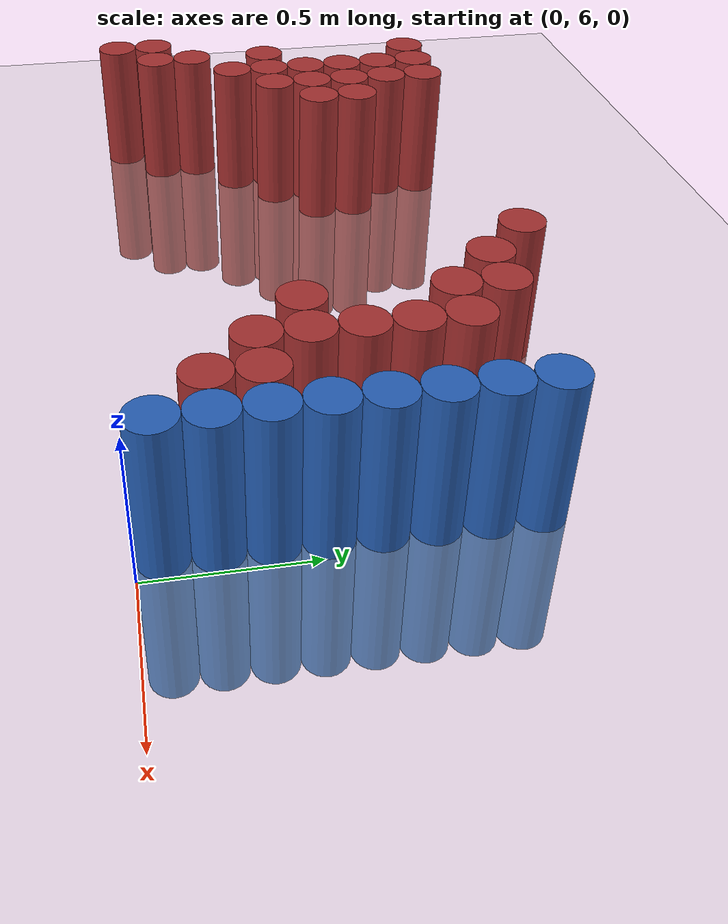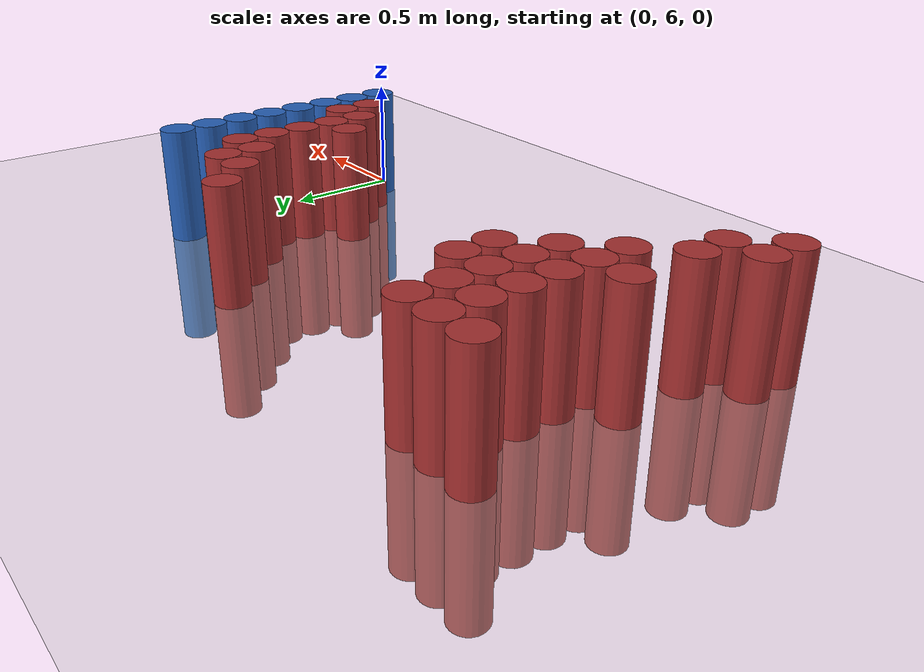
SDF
<sdf version="1.6">
 <world name="default">
  <model name="ground_plane">
   <static>1</static>
   <link name="link">
    <collision name="collision">
     <geometry><plane><normal>0 0 1</normal><size>100 100</size></plane></geometry>
     <surface><friction><ode><mu>100</mu><mu2>50</mu2></ode></friction></surface>
    </collision>
    <visual name="visual">
     <cast_shadows>0</cast_shadows>
     <geometry><plane><normal>0 0 1</normal><size>100 100</size></plane></geometry>
     <material>
      <script><uri>file://media/materials/scripts/gazebo.material</uri><name>Gazebo/Grey</name></script>
     </material>
    </visual>
   </link>
  </model>
  <model name="unit_cylinder_209">
   <static>1</static>
   <pose>-2.475000 6.075000 0.000000 0.000000 0.000000 0.000000</pose>
   <link name="link">
    <inertial>
     <mass>1</mass>
     <inertia><ixx>0.145833</ixx><ixy>0</ixy><ixz>0</ixz><iyy>0.145833</iyy><iyz>0</iyz><izz>0.125</izz></inertia>
    </inertial>
    <collision name="collision">
     <geometry><cylinder><radius>0.075000</radius><length>1</length></cylinder></geometry>
    </collision>
    <visual name="visual">
     <geometry><cylinder><radius>0.075000</radius><length>1</length></cylinder></geometry>
     <material>
      <ambient>0.648000 0.192000 0.192000 1</ambient>
      <diffuse>0.648000 0.192000 0.192000 1</diffuse>
     </material>
     <material>
      <script><name>Gazebo/Grey</name><uri>file://media/materials/scripts/gazebo.material</uri></script>
     </material>
    </visual>
    <sensor name="sensor_contact" type="contact"><contact><collision>collision</collision></contact></sensor>
   </link>
   <plugin filename="gz-sim-touchplugin-system" name="gz::sim::systems::TouchPlugin">
    <target>robot</target>
    <namespace>robot</namespace>
    <time>0.001</time>
    <enabled>true</enabled>
   </plugin>
  </model>
  <model name="unit_cylinder_210">
   <static>1</static>
   <pose>-2.475000 6.225000 0.000000 0.000000 0.000000 0.000000</pose>
   <link name="link">
    <inertial>
     <mass>1</mass>
     <inertia><ixx>0.145833</ixx><ixy>0</ixy><ixz>0</ixz><iyy>0.145833</iyy><iyz>0</iyz><izz>0.125</izz></inertia>
    </inertial>
    <collision name="collision">
     <geometry><cylinder><radius>0.075000</radius><length>1</length></cylinder></geometry>
    </collision>
    <visual name="visual">
     <geometry><cylinder><radius>0.075000</radius><length>1</length></cylinder></geometry>
     <material>
      <ambient>0.648000 0.192000 0.192000 1</ambient>
      <diffuse>0.648000 0.192000 0.192000 1</diffuse>
     </material>
     <material>
      <script><name>Gazebo/Grey</name><uri>file://media/materials/scripts/gazebo.material</uri></script>
     </material>
    </visual>
    <sensor name="sensor_contact" type="contact"><contact><collision>collision</collision></contact></sensor>
   </link>
   <plugin filename="gz-sim-touchplugin-system" name="gz::sim::systems::TouchPlugin">
    <target>robot</target>
    <namespace>robot</namespace>
    <time>0.001</time>
    <enabled>true</enabled>
   </plugin>
  </model>
  <model name="unit_cylinder_213">
   <static>1</static>
   <pose>-2.325000 6.225000 0.000000 0.000000 0.000000 0.000000</pose>
   <link name="link">
    <inertial>
     <mass>1</mass>
     <inertia><ixx>0.145833</ixx><ixy>0</ixy><ixz>0</ixz><iyy>0.145833</iyy><iyz>0</iyz><izz>0.125</izz></inertia>
    </inertial>
    <collision name="collision">
     <geometry><cylinder><radius>0.075000</radius><length>1</length></cylinder></geometry>
    </collision>
    <visual name="visual">
     <geometry><cylinder><radius>0.075000</radius><length>1</length></cylinder></geometry>
     <material>
      <ambient>0.648000 0.192000 0.192000 1</ambient>
      <diffuse>0.648000 0.192000 0.192000 1</diffuse>
     </material>
     <material>
      <script><name>Gazebo/Grey</name><uri>file://media/materials/scripts/gazebo.material</uri></script>
     </material>
    </visual>
    <sensor name="sensor_contact" type="contact"><contact><collision>collision</collision></contact></sensor>
   </link>
   <plugin filename="gz-sim-touchplugin-system" name="gz::sim::systems::TouchPlugin">
    <target>robot</target>
    <namespace>robot</namespace>
    <time>0.001</time>
    <enabled>true</enabled>
   </plugin>
  </model>
  <model name="unit_cylinder_214">
   <static>1</static>
   <pose>-2.325000 6.375000 0.000000 0.000000 0.000000 0.000000</pose>
   <link name="link">
    <inertial>
     <mass>1</mass>
     <inertia><ixx>0.145833</ixx><ixy>0</ixy><ixz>0</ixz><iyy>0.145833</iyy><iyz>0</iyz><izz>0.125</izz></inertia>
    </inertial>
    <collision name="collision">
     <geometry><cylinder><radius>0.075000</radius><length>1</length></cylinder></geometry>
    </collision>
    <visual name="visual">
     <geometry><cylinder><radius>0.075000</radius><length>1</length></cylinder></geometry>
     <material>
      <ambient>0.648000 0.192000 0.192000 1</ambient>
      <diffuse>0.648000 0.192000 0.192000 1</diffuse>
     </material>
     <material>
      <script><name>Gazebo/Grey</name><uri>file://media/materials/scripts/gazebo.material</uri></script>
     </material>
    </visual>
    <sensor name="sensor_contact" type="contact"><contact><collision>collision</collision></contact></sensor>
   </link>
   <plugin filename="gz-sim-touchplugin-system" name="gz::sim::systems::TouchPlugin">
    <target>robot</target>
    <namespace>robot</namespace>
    <time>0.001</time>
    <enabled>true</enabled>
   </plugin>
  </model>
  <model name="unit_cylinder_215">
   <static>1</static>
   <pose>-2.325000 6.675000 0.000000 0.000000 0.000000 0.000000</pose>
   <link name="link">
    <inertial>
     <mass>1</mass>
     <inertia><ixx>0.145833</ixx><ixy>0</ixy><ixz>0</ixz><iyy>0.145833</iyy><iyz>0</iyz><izz>0.125</izz></inertia>
    </inertial>
    <collision name="collision">
     <geometry><cylinder><radius>0.075000</radius><length>1</length></cylinder></geometry>
    </collision>
    <visual name="visual">
     <geometry><cylinder><radius>0.075000</radius><length>1</length></cylinder></geometry>
     <material>
      <ambient>0.648000 0.192000 0.192000 1</ambient>
      <diffuse>0.648000 0.192000 0.192000 1</diffuse>
     </material>
     <material>
      <script><name>Gazebo/Grey</name><uri>file://media/materials/scripts/gazebo.material</uri></script>
     </material>
    </visual>
    <sensor name="sensor_contact" type="contact"><contact><collision>collision</collision></contact></sensor>
   </link>
   <plugin filename="gz-sim-touchplugin-system" name="gz::sim::systems::TouchPlugin">
    <target>robot</target>
    <namespace>robot</namespace>
    <time>0.001</time>
    <enabled>true</enabled>
   </plugin>
  </model>
  <model name="unit_cylinder_216">
   <static>1</static>
   <pose>-2.325000 7.275000 0.000000 0.000000 0.000000 0.000000</pose>
   <link name="link">
    <inertial>
     <mass>1</mass>
     <inertia><ixx>0.145833</ixx><ixy>0</ixy><ixz>0</ixz><iyy>0.145833</iyy><iyz>0</iyz><izz>0.125</izz></inertia>
    </inertial>
    <collision name="collision">
     <geometry><cylinder><radius>0.075000</radius><length>1</length></cylinder></geometry>
    </collision>
    <visual name="visual">
     <geometry><cylinder><radius>0.075000</radius><length>1</length></cylinder></geometry>
     <material>
      <ambient>0.648000 0.192000 0.192000 1</ambient>
      <diffuse>0.648000 0.192000 0.192000 1</diffuse>
     </material>
     <material>
      <script><name>Gazebo/Grey</name><uri>file://media/materials/scripts/gazebo.material</uri></script>
     </material>
    </visual>
    <sensor name="sensor_contact" type="contact"><contact><collision>collision</collision></contact></sensor>
   </link>
   <plugin filename="gz-sim-touchplugin-system" name="gz::sim::systems::TouchPlugin">
    <target>robot</target>
    <namespace>robot</namespace>
    <time>0.001</time>
    <enabled>true</enabled>
   </plugin>
  </model>
  <model name="unit_cylinder_218">
   <static>1</static>
   <pose>-2.175000 6.525000 0.000000 0.000000 0.000000 0.000000</pose>
   <link name="link">
    <inertial>
     <mass>1</mass>
     <inertia><ixx>0.145833</ixx><ixy>0</ixy><ixz>0</ixz><iyy>0.145833</iyy><iyz>0</iyz><izz>0.125</izz></inertia>
    </inertial>
    <collision name="collision">
     <geometry><cylinder><radius>0.075000</radius><length>1</length></cylinder></geometry>
    </collision>
    <visual name="visual">
     <geometry><cylinder><radius>0.075000</radius><length>1</length></cylinder></geometry>
     <material>
      <ambient>0.648000 0.192000 0.192000 1</ambient>
      <diffuse>0.648000 0.192000 0.192000 1</diffuse>
     </material>
     <material>
      <script><name>Gazebo/Grey</name><uri>file://media/materials/scripts/gazebo.material</uri></script>
     </material>
    </visual>
    <sensor name="sensor_contact" type="contact"><contact><collision>collision</collision></contact></sensor>
   </link>
   <plugin filename="gz-sim-touchplugin-system" name="gz::sim::systems::TouchPlugin">
    <target>robot</target>
    <namespace>robot</namespace>
    <time>0.001</time>
    <enabled>true</enabled>
   </plugin>
  </model>
  <model name="unit_cylinder_219">
   <static>1</static>
   <pose>-2.175000 6.675000 0.000000 0.000000 0.000000 0.000000</pose>
   <link name="link">
    <inertial>
     <mass>1</mass>
     <inertia><ixx>0.145833</ixx><ixy>0</ixy><ixz>0</ixz><iyy>0.145833</iyy><iyz>0</iyz><izz>0.125</izz></inertia>
    </inertial>
    <collision name="collision">
     <geometry><cylinder><radius>0.075000</radius><length>1</length></cylinder></geometry>
    </collision>
    <visual name="visual">
     <geometry><cylinder><radius>0.075000</radius><length>1</length></cylinder></geometry>
     <material>
      <ambient>0.648000 0.192000 0.192000 1</ambient>
      <diffuse>0.648000 0.192000 0.192000 1</diffuse>
     </material>
     <material>
      <script><name>Gazebo/Grey</name><uri>file://media/materials/scripts/gazebo.material</uri></script>
     </material>
    </visual>
    <sensor name="sensor_contact" type="contact"><contact><collision>collision</collision></contact></sensor>
   </link>
   <plugin filename="gz-sim-touchplugin-system" name="gz::sim::systems::TouchPlugin">
    <target>robot</target>
    <namespace>robot</namespace>
    <time>0.001</time>
    <enabled>true</enabled>
   </plugin>
  </model>
  <model name="unit_cylinder_220">
   <static>1</static>
   <pose>-2.175000 6.825000 0.000000 0.000000 0.000000 0.000000</pose>
   <link name="link">
    <inertial>
     <mass>1</mass>
     <inertia><ixx>0.145833</ixx><ixy>0</ixy><ixz>0</ixz><iyy>0.145833</iyy><iyz>0</iyz><izz>0.125</izz></inertia>
    </inertial>
    <collision name="collision">
     <geometry><cylinder><radius>0.075000</radius><length>1</length></cylinder></geometry>
    </collision>
    <visual name="visual">
     <geometry><cylinder><radius>0.075000</radius><length>1</length></cylinder></geometry>
     <material>
      <ambient>0.648000 0.192000 0.192000 1</ambient>
      <diffuse>0.648000 0.192000 0.192000 1</diffuse>
     </material>
     <material>
      <script><name>Gazebo/Grey</name><uri>file://media/materials/scripts/gazebo.material</uri></script>
     </material>
    </visual>
    <sensor name="sensor_contact" type="contact"><contact><collision>collision</collision></contact></sensor>
   </link>
   <plugin filename="gz-sim-touchplugin-system" name="gz::sim::systems::TouchPlugin">
    <target>robot</target>
    <namespace>robot</namespace>
    <time>0.001</time>
    <enabled>true</enabled>
   </plugin>
  </model>
  <model name="unit_cylinder_221">
   <static>1</static>
   <pose>-2.175000 6.975000 0.000000 0.000000 0.000000 0.000000</pose>
   <link name="link">
    <inertial>
     <mass>1</mass>
     <inertia><ixx>0.145833</ixx><ixy>0</ixy><ixz>0</ixz><iyy>0.145833</iyy><iyz>0</iyz><izz>0.125</izz></inertia>
    </inertial>
    <collision name="collision">
     <geometry><cylinder><radius>0.075000</radius><length>1</length></cylinder></geometry>
    </collision>
    <visual name="visual">
     <geometry><cylinder><radius>0.075000</radius><length>1</length></cylinder></geometry>
     <material>
      <ambient>0.648000 0.192000 0.192000 1</ambient>
      <diffuse>0.648000 0.192000 0.192000 1</diffuse>
     </material>
     <material>
      <script><name>Gazebo/Grey</name><uri>file://media/materials/scripts/gazebo.material</uri></script>
     </material>
    </visual>
    <sensor name="sensor_contact" type="contact"><contact><collision>collision</collision></contact></sensor>
   </link>
   <plugin filename="gz-sim-touchplugin-system" name="gz::sim::systems::TouchPlugin">
    <target>robot</target>
    <namespace>robot</namespace>
    <time>0.001</time>
    <enabled>true</enabled>
   </plugin>
  </model>
  <model name="unit_cylinder_222">
   <static>1</static>
   <pose>-2.175000 7.125000 0.000000 0.000000 0.000000 0.000000</pose>
   <link name="link">
    <inertial>
     <mass>1</mass>
     <inertia><ixx>0.145833</ixx><ixy>0</ixy><ixz>0</ixz><iyy>0.145833</iyy><iyz>0</iyz><izz>0.125</izz></inertia>
    </inertial>
    <collision name="collision">
     <geometry><cylinder><radius>0.075000</radius><length>1</length></cylinder></geometry>
    </collision>
    <visual name="visual">
     <geometry><cylinder><radius>0.075000</radius><length>1</length></cylinder></geometry>
     <material>
      <ambient>0.648000 0.192000 0.192000 1</ambient>
      <diffuse>0.648000 0.192000 0.192000 1</diffuse>
     </material>
     <material>
      <script><name>Gazebo/Grey</name><uri>file://media/materials/scripts/gazebo.material</uri></script>
     </material>
    </visual>
    <sensor name="sensor_contact" type="contact"><contact><collision>collision</collision></contact></sensor>
   </link>
   <plugin filename="gz-sim-touchplugin-system" name="gz::sim::systems::TouchPlugin">
    <target>robot</target>
    <namespace>robot</namespace>
    <time>0.001</time>
    <enabled>true</enabled>
   </plugin>
  </model>
  <model name="unit_cylinder_223">
   <static>1</static>
   <pose>-2.175000 7.275000 0.000000 0.000000 0.000000 0.000000</pose>
   <link name="link">
    <inertial>
     <mass>1</mass>
     <inertia><ixx>0.145833</ixx><ixy>0</ixy><ixz>0</ixz><iyy>0.145833</iyy><iyz>0</iyz><izz>0.125</izz></inertia>
    </inertial>
    <collision name="collision">
     <geometry><cylinder><radius>0.075000</radius><length>1</length></cylinder></geometry>
    </collision>
    <visual name="visual">
     <geometry><cylinder><radius>0.075000</radius><length>1</length></cylinder></geometry>
     <material>
      <ambient>0.648000 0.192000 0.192000 1</ambient>
      <diffuse>0.648000 0.192000 0.192000 1</diffuse>
     </material>
     <material>
      <script><name>Gazebo/Grey</name><uri>file://media/materials/scripts/gazebo.material</uri></script>
     </material>
    </visual>
    <sensor name="sensor_contact" type="contact"><contact><collision>collision</collision></contact></sensor>
   </link>
   <plugin filename="gz-sim-touchplugin-system" name="gz::sim::systems::TouchPlugin">
    <target>robot</target>
    <namespace>robot</namespace>
    <time>0.001</time>
    <enabled>true</enabled>
   </plugin>
  </model>
  <model name="unit_cylinder_225">
   <static>1</static>
   <pose>-2.025000 6.675000 0.000000 0.000000 0.000000 0.000000</pose>
   <link name="link">
    <inertial>
     <mass>1</mass>
     <inertia><ixx>0.145833</ixx><ixy>0</ixy><ixz>0</ixz><iyy>0.145833</iyy><iyz>0</iyz><izz>0.125</izz></inertia>
    </inertial>
    <collision name="collision">
     <geometry><cylinder><radius>0.075000</radius><length>1</length></cylinder></geometry>
    </collision>
    <visual name="visual">
     <geometry><cylinder><radius>0.075000</radius><length>1</length></cylinder></geometry>
     <material>
      <ambient>0.648000 0.192000 0.192000 1</ambient>
      <diffuse>0.648000 0.192000 0.192000 1</diffuse>
     </material>
     <material>
      <script><name>Gazebo/Grey</name><uri>file://media/materials/scripts/gazebo.material</uri></script>
     </material>
    </visual>
    <sensor name="sensor_contact" type="contact"><contact><collision>collision</collision></contact></sensor>
   </link>
   <plugin filename="gz-sim-touchplugin-system" name="gz::sim::systems::TouchPlugin">
    <target>robot</target>
    <namespace>robot</namespace>
    <time>0.001</time>
    <enabled>true</enabled>
   </plugin>
  </model>
  <model name="unit_cylinder_226">
   <static>1</static>
   <pose>-2.025000 6.825000 0.000000 0.000000 0.000000 0.000000</pose>
   <link name="link">
    <inertial>
     <mass>1</mass>
     <inertia><ixx>0.145833</ixx><ixy>0</ixy><ixz>0</ixz><iyy>0.145833</iyy><iyz>0</iyz><izz>0.125</izz></inertia>
    </inertial>
    <collision name="collision">
     <geometry><cylinder><radius>0.075000</radius><length>1</length></cylinder></geometry>
    </collision>
    <visual name="visual">
     <geometry><cylinder><radius>0.075000</radius><length>1</length></cylinder></geometry>
     <material>
      <ambient>0.648000 0.192000 0.192000 1</ambient>
      <diffuse>0.648000 0.192000 0.192000 1</diffuse>
     </material>
     <material>
      <script><name>Gazebo/Grey</name><uri>file://media/materials/scripts/gazebo.material</uri></script>
     </material>
    </visual>
    <sensor name="sensor_contact" type="contact"><contact><collision>collision</collision></contact></sensor>
   </link>
   <plugin filename="gz-sim-touchplugin-system" name="gz::sim::systems::TouchPlugin">
    <target>robot</target>
    <namespace>robot</namespace>
    <time>0.001</time>
    <enabled>true</enabled>
   </plugin>
  </model>
  <model name="unit_cylinder_227">
   <static>1</static>
   <pose>-2.025000 6.975000 0.000000 0.000000 0.000000 0.000000</pose>
   <link name="link">
    <inertial>
     <mass>1</mass>
     <inertia><ixx>0.145833</ixx><ixy>0</ixy><ixz>0</ixz><iyy>0.145833</iyy><iyz>0</iyz><izz>0.125</izz></inertia>
    </inertial>
    <collision name="collision">
     <geometry><cylinder><radius>0.075000</radius><length>1</length></cylinder></geometry>
    </collision>
    <visual name="visual">
     <geometry><cylinder><radius>0.075000</radius><length>1</length></cylinder></geometry>
     <material>
      <ambient>0.648000 0.192000 0.192000 1</ambient>
      <diffuse>0.648000 0.192000 0.192000 1</diffuse>
     </material>
     <material>
      <script><name>Gazebo/Grey</name><uri>file://media/materials/scripts/gazebo.material</uri></script>
     </material>
    </visual>
    <sensor name="sensor_contact" type="contact"><contact><collision>collision</collision></contact></sensor>
   </link>
   <plugin filename="gz-sim-touchplugin-system" name="gz::sim::systems::TouchPlugin">
    <target>robot</target>
    <namespace>robot</namespace>
    <time>0.001</time>
    <enabled>true</enabled>
   </plugin>
  </model>
  <model name="unit_cylinder_228">
   <static>1</static>
   <pose>-2.025000 7.125000 0.000000 0.000000 0.000000 0.000000</pose>
   <link name="link">
    <inertial>
     <mass>1</mass>
     <inertia><ixx>0.145833</ixx><ixy>0</ixy><ixz>0</ixz><iyy>0.145833</iyy><iyz>0</iyz><izz>0.125</izz></inertia>
    </inertial>
    <collision name="collision">
     <geometry><cylinder><radius>0.075000</radius><length>1</length></cylinder></geometry>
    </collision>
    <visual name="visual">
     <geometry><cylinder><radius>0.075000</radius><length>1</length></cylinder></geometry>
     <material>
      <ambient>0.648000 0.192000 0.192000 1</ambient>
      <diffuse>0.648000 0.192000 0.192000 1</diffuse>
     </material>
     <material>
      <script><name>Gazebo/Grey</name><uri>file://media/materials/scripts/gazebo.material</uri></script>
     </material>
    </visual>
    <sensor name="sensor_contact" type="contact"><contact><collision>collision</collision></contact></sensor>
   </link>
   <plugin filename="gz-sim-touchplugin-system" name="gz::sim::systems::TouchPlugin">
    <target>robot</target>
    <namespace>robot</namespace>
    <time>0.001</time>
    <enabled>true</enabled>
   </plugin>
  </model>
  <model name="unit_cylinder_229">
   <static>1</static>
   <pose>-2.025000 7.275000 0.000000 0.000000 0.000000 0.000000</pose>
   <link name="link">
    <inertial>
     <mass>1</mass>
     <inertia><ixx>0.145833</ixx><ixy>0</ixy><ixz>0</ixz><iyy>0.145833</iyy><iyz>0</iyz><izz>0.125</izz></inertia>
    </inertial>
    <collision name="collision">
     <geometry><cylinder><radius>0.075000</radius><length>1</length></cylinder></geometry>
    </collision>
    <visual name="visual">
     <geometry><cylinder><radius>0.075000</radius><length>1</length></cylinder></geometry>
     <material>
      <ambient>0.648000 0.192000 0.192000 1</ambient>
      <diffuse>0.648000 0.192000 0.192000 1</diffuse>
     </material>
     <material>
      <script><name>Gazebo/Grey</name><uri>file://media/materials/scripts/gazebo.material</uri></script>
     </material>
    </visual>
    <sensor name="sensor_contact" type="contact"><contact><collision>collision</collision></contact></sensor>
   </link>
   <plugin filename="gz-sim-touchplugin-system" name="gz::sim::systems::TouchPlugin">
    <target>robot</target>
    <namespace>robot</namespace>
    <time>0.001</time>
    <enabled>true</enabled>
   </plugin>
  </model>
  <model name="unit_cylinder_231">
   <static>1</static>
   <pose>-1.875000 6.825000 0.000000 0.000000 0.000000 0.000000</pose>
   <link name="link">
    <inertial>
     <mass>1</mass>
     <inertia><ixx>0.145833</ixx><ixy>0</ixy><ixz>0</ixz><iyy>0.145833</iyy><iyz>0</iyz><izz>0.125</izz></inertia>
    </inertial>
    <collision name="collision">
     <geometry><cylinder><radius>0.075000</radius><length>1</length></cylinder></geometry>
    </collision>
    <visual name="visual">
     <geometry><cylinder><radius>0.075000</radius><length>1</length></cylinder></geometry>
     <material>
      <ambient>0.648000 0.192000 0.192000 1</ambient>
      <diffuse>0.648000 0.192000 0.192000 1</diffuse>
     </material>
     <material>
      <script><name>Gazebo/Grey</name><uri>file://media/materials/scripts/gazebo.material</uri></script>
     </material>
    </visual>
    <sensor name="sensor_contact" type="contact"><contact><collision>collision</collision></contact></sensor>
   </link>
   <plugin filename="gz-sim-touchplugin-system" name="gz::sim::systems::TouchPlugin">
    <target>robot</target>
    <namespace>robot</namespace>
    <time>0.001</time>
    <enabled>true</enabled>
   </plugin>
  </model>
  <model name="unit_cylinder_232">
   <static>1</static>
   <pose>-1.875000 6.975000 0.000000 0.000000 0.000000 0.000000</pose>
   <link name="link">
    <inertial>
     <mass>1</mass>
     <inertia><ixx>0.145833</ixx><ixy>0</ixy><ixz>0</ixz><iyy>0.145833</iyy><iyz>0</iyz><izz>0.125</izz></inertia>
    </inertial>
    <collision name="collision">
     <geometry><cylinder><radius>0.075000</radius><length>1</length></cylinder></geometry>
    </collision>
    <visual name="visual">
     <geometry><cylinder><radius>0.075000</radius><length>1</length></cylinder></geometry>
     <material>
      <ambient>0.648000 0.192000 0.192000 1</ambient>
      <diffuse>0.648000 0.192000 0.192000 1</diffuse>
     </material>
     <material>
      <script><name>Gazebo/Grey</name><uri>file://media/materials/scripts/gazebo.material</uri></script>
     </material>
    </visual>
    <sensor name="sensor_contact" type="contact"><contact><collision>collision</collision></contact></sensor>
   </link>
   <plugin filename="gz-sim-touchplugin-system" name="gz::sim::systems::TouchPlugin">
    <target>robot</target>
    <namespace>robot</namespace>
    <time>0.001</time>
    <enabled>true</enabled>
   </plugin>
  </model>
  <model name="unit_cylinder_263">
   <static>1</static>
   <pose>-0.825000 7.275000 0.000000 0.000000 0.000000 0.000000</pose>
   <link name="link">
    <inertial>
     <mass>1</mass>
     <inertia><ixx>0.145833</ixx><ixy>0</ixy><ixz>0</ixz><iyy>0.145833</iyy><iyz>0</iyz><izz>0.125</izz></inertia>
    </inertial>
    <collision name="collision">
     <geometry><cylinder><radius>0.075000</radius><length>1</length></cylinder></geometry>
    </collision>
    <visual name="visual">
     <geometry><cylinder><radius>0.075000</radius><length>1</length></cylinder></geometry>
     <material>
      <ambient>0.648000 0.192000 0.192000 1</ambient>
      <diffuse>0.648000 0.192000 0.192000 1</diffuse>
     </material>
     <material>
      <script><name>Gazebo/Grey</name><uri>file://media/materials/scripts/gazebo.material</uri></script>
     </material>
    </visual>
    <sensor name="sensor_contact" type="contact"><contact><collision>collision</collision></contact></sensor>
   </link>
   <plugin filename="gz-sim-touchplugin-system" name="gz::sim::systems::TouchPlugin">
    <target>robot</target>
    <namespace>robot</namespace>
    <time>0.001</time>
    <enabled>true</enabled>
   </plugin>
  </model>
  <model name="unit_cylinder_271">
   <static>1</static>
   <pose>-0.675000 7.125000 0.000000 0.000000 0.000000 0.000000</pose>
   <link name="link">
    <inertial>
     <mass>1</mass>
     <inertia><ixx>0.145833</ixx><ixy>0</ixy><ixz>0</ixz><iyy>0.145833</iyy><iyz>0</iyz><izz>0.125</izz></inertia>
    </inertial>
    <collision name="collision">
     <geometry><cylinder><radius>0.075000</radius><length>1</length></cylinder></geometry>
    </collision>
    <visual name="visual">
     <geometry><cylinder><radius>0.075000</radius><length>1</length></cylinder></geometry>
     <material>
      <ambient>0.648000 0.192000 0.192000 1</ambient>
      <diffuse>0.648000 0.192000 0.192000 1</diffuse>
     </material>
     <material>
      <script><name>Gazebo/Grey</name><uri>file://media/materials/scripts/gazebo.material</uri></script>
     </material>
    </visual>
    <sensor name="sensor_contact" type="contact"><contact><collision>collision</collision></contact></sensor>
   </link>
   <plugin filename="gz-sim-touchplugin-system" name="gz::sim::systems::TouchPlugin">
    <target>robot</target>
    <namespace>robot</namespace>
    <time>0.001</time>
    <enabled>true</enabled>
   </plugin>
  </model>
  <model name="unit_cylinder_281">
   <static>1</static>
   <pose>-0.525000 6.525000 0.000000 0.000000 0.000000 0.000000</pose>
   <link name="link">
    <inertial>
     <mass>1</mass>
     <inertia><ixx>0.145833</ixx><ixy>0</ixy><ixz>0</ixz><iyy>0.145833</iyy><iyz>0</iyz><izz>0.125</izz></inertia>
    </inertial>
    <collision name="collision">
     <geometry><cylinder><radius>0.075000</radius><length>1</length></cylinder></geometry>
    </collision>
    <visual name="visual">
     <geometry><cylinder><radius>0.075000</radius><length>1</length></cylinder></geometry>
     <material>
      <ambient>0.648000 0.192000 0.192000 1</ambient>
      <diffuse>0.648000 0.192000 0.192000 1</diffuse>
     </material>
     <material>
      <script><name>Gazebo/Grey</name><uri>file://media/materials/scripts/gazebo.material</uri></script>
     </material>
    </visual>
    <sensor name="sensor_contact" type="contact"><contact><collision>collision</collision></contact></sensor>
   </link>
   <plugin filename="gz-sim-touchplugin-system" name="gz::sim::systems::TouchPlugin">
    <target>robot</target>
    <namespace>robot</namespace>
    <time>0.001</time>
    <enabled>true</enabled>
   </plugin>
  </model>
  <model name="unit_cylinder_282">
   <static>1</static>
   <pose>-0.525000 6.975000 0.000000 0.000000 0.000000 0.000000</pose>
   <link name="link">
    <inertial>
     <mass>1</mass>
     <inertia><ixx>0.145833</ixx><ixy>0</ixy><ixz>0</ixz><iyy>0.145833</iyy><iyz>0</iyz><izz>0.125</izz></inertia>
    </inertial>
    <collision name="collision">
     <geometry><cylinder><radius>0.075000</radius><length>1</length></cylinder></geometry>
    </collision>
    <visual name="visual">
     <geometry><cylinder><radius>0.075000</radius><length>1</length></cylinder></geometry>
     <material>
      <ambient>0.648000 0.192000 0.192000 1</ambient>
      <diffuse>0.648000 0.192000 0.192000 1</diffuse>
     </material>
     <material>
      <script><name>Gazebo/Grey</name><uri>file://media/materials/scripts/gazebo.material</uri></script>
     </material>
    </visual>
    <sensor name="sensor_contact" type="contact"><contact><collision>collision</collision></contact></sensor>
   </link>
   <plugin filename="gz-sim-touchplugin-system" name="gz::sim::systems::TouchPlugin">
    <target>robot</target>
    <namespace>robot</namespace>
    <time>0.001</time>
    <enabled>true</enabled>
   </plugin>
  </model>
  <model name="unit_cylinder_283">
   <static>1</static>
   <pose>-0.525000 7.125000 0.000000 0.000000 0.000000 0.000000</pose>
   <link name="link">
    <inertial>
     <mass>1</mass>
     <inertia><ixx>0.145833</ixx><ixy>0</ixy><ixz>0</ixz><iyy>0.145833</iyy><iyz>0</iyz><izz>0.125</izz></inertia>
    </inertial>
    <collision name="collision">
     <geometry><cylinder><radius>0.075000</radius><length>1</length></cylinder></geometry>
    </collision>
    <visual name="visual">
     <geometry><cylinder><radius>0.075000</radius><length>1</length></cylinder></geometry>
     <material>
      <ambient>0.648000 0.192000 0.192000 1</ambient>
      <diffuse>0.648000 0.192000 0.192000 1</diffuse>
     </material>
     <material>
      <script><name>Gazebo/Grey</name><uri>file://media/materials/scripts/gazebo.material</uri></script>
     </material>
    </visual>
    <sensor name="sensor_contact" type="contact"><contact><collision>collision</collision></contact></sensor>
   </link>
   <plugin filename="gz-sim-touchplugin-system" name="gz::sim::systems::TouchPlugin">
    <target>robot</target>
    <namespace>robot</namespace>
    <time>0.001</time>
    <enabled>true</enabled>
   </plugin>
  </model>
  <model name="unit_cylinder_297">
   <static>1</static>
   <pose>-0.375000 6.375000 0.000000 0.000000 0.000000 0.000000</pose>
   <link name="link">
    <inertial>
     <mass>1</mass>
     <inertia><ixx>0.145833</ixx><ixy>0</ixy><ixz>0</ixz><iyy>0.145833</iyy><iyz>0</iyz><izz>0.125</izz></inertia>
    </inertial>
    <collision name="collision">
     <geometry><cylinder><radius>0.075000</radius><length>1</length></cylinder></geometry>
    </collision>
    <visual name="visual">
     <geometry><cylinder><radius>0.075000</radius><length>1</length></cylinder></geometry>
     <material>
      <ambient>0.648000 0.192000 0.192000 1</ambient>
      <diffuse>0.648000 0.192000 0.192000 1</diffuse>
     </material>
     <material>
      <script><name>Gazebo/Grey</name><uri>file://media/materials/scripts/gazebo.material</uri></script>
     </material>
    </visual>
    <sensor name="sensor_contact" type="contact"><contact><collision>collision</collision></contact></sensor>
   </link>
   <plugin filename="gz-sim-touchplugin-system" name="gz::sim::systems::TouchPlugin">
    <target>robot</target>
    <namespace>robot</namespace>
    <time>0.001</time>
    <enabled>true</enabled>
   </plugin>
  </model>
  <model name="unit_cylinder_298">
   <static>1</static>
   <pose>-0.375000 6.525000 0.000000 0.000000 0.000000 0.000000</pose>
   <link name="link">
    <inertial>
     <mass>1</mass>
     <inertia><ixx>0.145833</ixx><ixy>0</ixy><ixz>0</ixz><iyy>0.145833</iyy><iyz>0</iyz><izz>0.125</izz></inertia>
    </inertial>
    <collision name="collision">
     <geometry><cylinder><radius>0.075000</radius><length>1</length></cylinder></geometry>
    </collision>
    <visual name="visual">
     <geometry><cylinder><radius>0.075000</radius><length>1</length></cylinder></geometry>
     <material>
      <ambient>0.648000 0.192000 0.192000 1</ambient>
      <diffuse>0.648000 0.192000 0.192000 1</diffuse>
     </material>
     <material>
      <script><name>Gazebo/Grey</name><uri>file://media/materials/scripts/gazebo.material</uri></script>
     </material>
    </visual>
    <sensor name="sensor_contact" type="contact"><contact><collision>collision</collision></contact></sensor>
   </link>
   <plugin filename="gz-sim-touchplugin-system" name="gz::sim::systems::TouchPlugin">
    <target>robot</target>
    <namespace>robot</namespace>
    <time>0.001</time>
    <enabled>true</enabled>
   </plugin>
  </model>
  <model name="unit_cylinder_299">
   <static>1</static>
   <pose>-0.375000 6.675000 0.000000 0.000000 0.000000 0.000000</pose>
   <link name="link">
    <inertial>
     <mass>1</mass>
     <inertia><ixx>0.145833</ixx><ixy>0</ixy><ixz>0</ixz><iyy>0.145833</iyy><iyz>0</iyz><izz>0.125</izz></inertia>
    </inertial>
    <collision name="collision">
     <geometry><cylinder><radius>0.075000</radius><length>1</length></cylinder></geometry>
    </collision>
    <visual name="visual">
     <geometry><cylinder><radius>0.075000</radius><length>1</length></cylinder></geometry>
     <material>
      <ambient>0.648000 0.192000 0.192000 1</ambient>
      <diffuse>0.648000 0.192000 0.192000 1</diffuse>
     </material>
     <material>
      <script><name>Gazebo/Grey</name><uri>file://media/materials/scripts/gazebo.material</uri></script>
     </material>
    </visual>
    <sensor name="sensor_contact" type="contact"><contact><collision>collision</collision></contact></sensor>
   </link>
   <plugin filename="gz-sim-touchplugin-system" name="gz::sim::systems::TouchPlugin">
    <target>robot</target>
    <namespace>robot</namespace>
    <time>0.001</time>
    <enabled>true</enabled>
   </plugin>
  </model>
  <model name="unit_cylinder_300">
   <static>1</static>
   <pose>-0.375000 6.825000 0.000000 0.000000 0.000000 0.000000</pose>
   <link name="link">
    <inertial>
     <mass>1</mass>
     <inertia><ixx>0.145833</ixx><ixy>0</ixy><ixz>0</ixz><iyy>0.145833</iyy><iyz>0</iyz><izz>0.125</izz></inertia>
    </inertial>
    <collision name="collision">
     <geometry><cylinder><radius>0.075000</radius><length>1</length></cylinder></geometry>
    </collision>
    <visual name="visual">
     <geometry><cylinder><radius>0.075000</radius><length>1</length></cylinder></geometry>
     <material>
      <ambient>0.648000 0.192000 0.192000 1</ambient>
      <diffuse>0.648000 0.192000 0.192000 1</diffuse>
     </material>
     <material>
      <script><name>Gazebo/Grey</name><uri>file://media/materials/scripts/gazebo.material</uri></script>
     </material>
    </visual>
    <sensor name="sensor_contact" type="contact"><contact><collision>collision</collision></contact></sensor>
   </link>
   <plugin filename="gz-sim-touchplugin-system" name="gz::sim::systems::TouchPlugin">
    <target>robot</target>
    <namespace>robot</namespace>
    <time>0.001</time>
    <enabled>true</enabled>
   </plugin>
  </model>
  <model name="unit_cylinder_301">
   <static>1</static>
   <pose>-0.375000 6.975000 0.000000 0.000000 0.000000 0.000000</pose>
   <link name="link">
    <inertial>
     <mass>1</mass>
     <inertia><ixx>0.145833</ixx><ixy>0</ixy><ixz>0</ixz><iyy>0.145833</iyy><iyz>0</iyz><izz>0.125</izz></inertia>
    </inertial>
    <collision name="collision">
     <geometry><cylinder><radius>0.075000</radius><length>1</length></cylinder></geometry>
    </collision>
    <visual name="visual">
     <geometry><cylinder><radius>0.075000</radius><length>1</length></cylinder></geometry>
     <material>
      <ambient>0.648000 0.192000 0.192000 1</ambient>
      <diffuse>0.648000 0.192000 0.192000 1</diffuse>
     </material>
     <material>
      <script><name>Gazebo/Grey</name><uri>file://media/materials/scripts/gazebo.material</uri></script>
     </material>
    </visual>
    <sensor name="sensor_contact" type="contact"><contact><collision>collision</collision></contact></sensor>
   </link>
   <plugin filename="gz-sim-touchplugin-system" name="gz::sim::systems::TouchPlugin">
    <target>robot</target>
    <namespace>robot</namespace>
    <time>0.001</time>
    <enabled>true</enabled>
   </plugin>
  </model>
  <model name="unit_cylinder_310">
   <static>1</static>
   <pose>-0.225000 6.225000 0.000000 0.000000 0.000000 0.000000</pose>
   <link name="link">
    <inertial>
     <mass>1</mass>
     <inertia><ixx>0.145833</ixx><ixy>0</ixy><ixz>0</ixz><iyy>0.145833</iyy><iyz>0</iyz><izz>0.125</izz></inertia>
    </inertial>
    <collision name="collision">
     <geometry><cylinder><radius>0.075000</radius><length>1</length></cylinder></geometry>
    </collision>
    <visual name="visual">
     <geometry><cylinder><radius>0.075000</radius><length>1</length></cylinder></geometry>
     <material>
      <ambient>0.648000 0.192000 0.192000 1</ambient>
      <diffuse>0.648000 0.192000 0.192000 1</diffuse>
     </material>
     <material>
      <script><name>Gazebo/Grey</name><uri>file://media/materials/scripts/gazebo.material</uri></script>
     </material>
    </visual>
    <sensor name="sensor_contact" type="contact"><contact><collision>collision</collision></contact></sensor>
   </link>
   <plugin filename="gz-sim-touchplugin-system" name="gz::sim::systems::TouchPlugin">
    <target>robot</target>
    <namespace>robot</namespace>
    <time>0.001</time>
    <enabled>true</enabled>
   </plugin>
  </model>
  <model name="unit_cylinder_311">
   <static>1</static>
   <pose>-0.225000 6.375000 0.000000 0.000000 0.000000 0.000000</pose>
   <link name="link">
    <inertial>
     <mass>1</mass>
     <inertia><ixx>0.145833</ixx><ixy>0</ixy><ixz>0</ixz><iyy>0.145833</iyy><iyz>0</iyz><izz>0.125</izz></inertia>
    </inertial>
    <collision name="collision">
     <geometry><cylinder><radius>0.075000</radius><length>1</length></cylinder></geometry>
    </collision>
    <visual name="visual">
     <geometry><cylinder><radius>0.075000</radius><length>1</length></cylinder></geometry>
     <material>
      <ambient>0.648000 0.192000 0.192000 1</ambient>
      <diffuse>0.648000 0.192000 0.192000 1</diffuse>
     </material>
     <material>
      <script><name>Gazebo/Grey</name><uri>file://media/materials/scripts/gazebo.material</uri></script>
     </material>
    </visual>
    <sensor name="sensor_contact" type="contact"><contact><collision>collision</collision></contact></sensor>
   </link>
   <plugin filename="gz-sim-touchplugin-system" name="gz::sim::systems::TouchPlugin">
    <target>robot</target>
    <namespace>robot</namespace>
    <time>0.001</time>
    <enabled>true</enabled>
   </plugin>
  </model>
  <model name="unit_cylinder_323">
   <static>1</static>
   <pose>-0.075000 6.075000 0.000000 0.000000 0.000000 0.000000</pose>
   <link name="link">
    <inertial>
     <mass>1</mass>
     <inertia><ixx>0.145833</ixx><ixy>0</ixy><ixz>0</ixz><iyy>0.145833</iyy><iyz>0</iyz><izz>0.125</izz></inertia>
    </inertial>
    <collision name="collision">
     <geometry><cylinder><radius>0.075000</radius><length>1</length></cylinder></geometry>
    </collision>
    <visual name="visual">
     <geometry><cylinder><radius>0.075000</radius><length>1</length></cylinder></geometry>
     <material>
      <ambient>0.152000 0.379000 0.720000 1</ambient>
      <diffuse>0.152000 0.379000 0.720000 1</diffuse>
     </material>
     <material>
      <script><name>Gazebo/Grey</name><uri>file://media/materials/scripts/gazebo.material</uri></script>
     </material>
    </visual>
    <sensor name="sensor_contact" type="contact"><contact><collision>collision</collision></contact></sensor>
   </link>
   <plugin filename="gz-sim-touchplugin-system" name="gz::sim::systems::TouchPlugin">
    <target>robot</target>
    <namespace>robot</namespace>
    <time>0.001</time>
    <enabled>true</enabled>
   </plugin>
  </model>
  <model name="unit_cylinder_324">
   <static>1</static>
   <pose>-0.075000 6.225000 0.000000 0.000000 0.000000 0.000000</pose>
   <link name="link">
    <inertial>
     <mass>1</mass>
     <inertia><ixx>0.145833</ixx><ixy>0</ixy><ixz>0</ixz><iyy>0.145833</iyy><iyz>0</iyz><izz>0.125</izz></inertia>
    </inertial>
    <collision name="collision">
     <geometry><cylinder><radius>0.075000</radius><length>1</length></cylinder></geometry>
    </collision>
    <visual name="visual">
     <geometry><cylinder><radius>0.075000</radius><length>1</length></cylinder></geometry>
     <material>
      <ambient>0.152000 0.379000 0.720000 1</ambient>
      <diffuse>0.152000 0.379000 0.720000 1</diffuse>
     </material>
     <material>
      <script><name>Gazebo/Grey</name><uri>file://media/materials/scripts/gazebo.material</uri></script>
     </material>
    </visual>
    <sensor name="sensor_contact" type="contact"><contact><collision>collision</collision></contact></sensor>
   </link>
   <plugin filename="gz-sim-touchplugin-system" name="gz::sim::systems::TouchPlugin">
    <target>robot</target>
    <namespace>robot</namespace>
    <time>0.001</time>
    <enabled>true</enabled>
   </plugin>
  </model>
  <model name="unit_cylinder_325">
   <static>1</static>
   <pose>-0.075000 6.375000 0.000000 0.000000 0.000000 0.000000</pose>
   <link name="link">
    <inertial>
     <mass>1</mass>
     <inertia><ixx>0.145833</ixx><ixy>0</ixy><ixz>0</ixz><iyy>0.145833</iyy><iyz>0</iyz><izz>0.125</izz></inertia>
    </inertial>
    <collision name="collision">
     <geometry><cylinder><radius>0.075000</radius><length>1</length></cylinder></geometry>
    </collision>
    <visual name="visual">
     <geometry><cylinder><radius>0.075000</radius><length>1</length></cylinder></geometry>
     <material>
      <ambient>0.152000 0.379000 0.720000 1</ambient>
      <diffuse>0.152000 0.379000 0.720000 1</diffuse>
     </material>
     <material>
      <script><name>Gazebo/Grey</name><uri>file://media/materials/scripts/gazebo.material</uri></script>
     </material>
    </visual>
    <sensor name="sensor_contact" type="contact"><contact><collision>collision</collision></contact></sensor>
   </link>
   <plugin filename="gz-sim-touchplugin-system" name="gz::sim::systems::TouchPlugin">
    <target>robot</target>
    <namespace>robot</namespace>
    <time>0.001</time>
    <enabled>true</enabled>
   </plugin>
  </model>
  <model name="unit_cylinder_326">
   <static>1</static>
   <pose>-0.075000 6.525000 0.000000 0.000000 0.000000 0.000000</pose>
   <link name="link">
    <inertial>
     <mass>1</mass>
     <inertia><ixx>0.145833</ixx><ixy>0</ixy><ixz>0</ixz><iyy>0.145833</iyy><iyz>0</iyz><izz>0.125</izz></inertia>
    </inertial>
    <collision name="collision">
     <geometry><cylinder><radius>0.075000</radius><length>1</length></cylinder></geometry>
    </collision>
    <visual name="visual">
     <geometry><cylinder><radius>0.075000</radius><length>1</length></cylinder></geometry>
     <material>
      <ambient>0.152000 0.379000 0.720000 1</ambient>
      <diffuse>0.152000 0.379000 0.720000 1</diffuse>
     </material>
     <material>
      <script><name>Gazebo/Grey</name><uri>file://media/materials/scripts/gazebo.material</uri></script>
     </material>
    </visual>
    <sensor name="sensor_contact" type="contact"><contact><collision>collision</collision></contact></sensor>
   </link>
   <plugin filename="gz-sim-touchplugin-system" name="gz::sim::systems::TouchPlugin">
    <target>robot</target>
    <namespace>robot</namespace>
    <time>0.001</time>
    <enabled>true</enabled>
   </plugin>
  </model>
  <model name="unit_cylinder_327">
   <static>1</static>
   <pose>-0.075000 6.675000 0.000000 0.000000 0.000000 0.000000</pose>
   <link name="link">
    <inertial>
     <mass>1</mass>
     <inertia><ixx>0.145833</ixx><ixy>0</ixy><ixz>0</ixz><iyy>0.145833</iyy><iyz>0</iyz><izz>0.125</izz></inertia>
    </inertial>
    <collision name="collision">
     <geometry><cylinder><radius>0.075000</radius><length>1</length></cylinder></geometry>
    </collision>
    <visual name="visual">
     <geometry><cylinder><radius>0.075000</radius><length>1</length></cylinder></geometry>
     <material>
      <ambient>0.152000 0.379000 0.720000 1</ambient>
      <diffuse>0.152000 0.379000 0.720000 1</diffuse>
     </material>
     <material>
      <script><name>Gazebo/Grey</name><uri>file://media/materials/scripts/gazebo.material</uri></script>
     </material>
    </visual>
    <sensor name="sensor_contact" type="contact"><contact><collision>collision</collision></contact></sensor>
   </link>
   <plugin filename="gz-sim-touchplugin-system" name="gz::sim::systems::TouchPlugin">
    <target>robot</target>
    <namespace>robot</namespace>
    <time>0.001</time>
    <enabled>true</enabled>
   </plugin>
  </model>
  <model name="unit_cylinder_328">
   <static>1</static>
   <pose>-0.075000 6.825000 0.000000 0.000000 0.000000 0.000000</pose>
   <link name="link">
    <inertial>
     <mass>1</mass>
     <inertia><ixx>0.145833</ixx><ixy>0</ixy><ixz>0</ixz><iyy>0.145833</iyy><iyz>0</iyz><izz>0.125</izz></inertia>
    </inertial>
    <collision name="collision">
     <geometry><cylinder><radius>0.075000</radius><length>1</length></cylinder></geometry>
    </collision>
    <visual name="visual">
     <geometry><cylinder><radius>0.075000</radius><length>1</length></cylinder></geometry>
     <material>
      <ambient>0.152000 0.379000 0.720000 1</ambient>
      <diffuse>0.152000 0.379000 0.720000 1</diffuse>
     </material>
     <material>
      <script><name>Gazebo/Grey</name><uri>file://media/materials/scripts/gazebo.material</uri></script>
     </material>
    </visual>
    <sensor name="sensor_contact" type="contact"><contact><collision>collision</collision></contact></sensor>
   </link>
   <plugin filename="gz-sim-touchplugin-system" name="gz::sim::systems::TouchPlugin">
    <target>robot</target>
    <namespace>robot</namespace>
    <time>0.001</time>
    <enabled>true</enabled>
   </plugin>
  </model>
  <model name="unit_cylinder_329">
   <static>1</static>
   <pose>-0.075000 6.975000 0.000000 0.000000 0.000000 0.000000</pose>
   <link name="link">
    <inertial>
     <mass>1</mass>
     <inertia><ixx>0.145833</ixx><ixy>0</ixy><ixz>0</ixz><iyy>0.145833</iyy><iyz>0</iyz><izz>0.125</izz></inertia>
    </inertial>
    <collision name="collision">
     <geometry><cylinder><radius>0.075000</radius><length>1</length></cylinder></geometry>
    </collision>
    <visual name="visual">
     <geometry><cylinder><radius>0.075000</radius><length>1</length></cylinder></geometry>
     <material>
      <ambient>0.152000 0.379000 0.720000 1</ambient>
      <diffuse>0.152000 0.379000 0.720000 1</diffuse>
     </material>
     <material>
      <script><name>Gazebo/Grey</name><uri>file://media/materials/scripts/gazebo.material</uri></script>
     </material>
    </visual>
    <sensor name="sensor_contact" type="contact"><contact><collision>collision</collision></contact></sensor>
   </link>
   <plugin filename="gz-sim-touchplugin-system" name="gz::sim::systems::TouchPlugin">
    <target>robot</target>
    <namespace>robot</namespace>
    <time>0.001</time>
    <enabled>true</enabled>
   </plugin>
  </model>
  <model name="unit_cylinder_330">
   <static>1</static>
   <pose>-0.075000 7.125000 0.000000 0.000000 0.000000 0.000000</pose>
   <link name="link">
    <inertial>
     <mass>1</mass>
     <inertia><ixx>0.145833</ixx><ixy>0</ixy><ixz>0</ixz><iyy>0.145833</iyy><iyz>0</iyz><izz>0.125</izz></inertia>
    </inertial>
    <collision name="collision">
     <geometry><cylinder><radius>0.075000</radius><length>1</length></cylinder></geometry>
    </collision>
    <visual name="visual">
     <geometry><cylinder><radius>0.075000</radius><length>1</length></cylinder></geometry>
     <material>
      <ambient>0.152000 0.379000 0.720000 1</ambient>
      <diffuse>0.152000 0.379000 0.720000 1</diffuse>
     </material>
     <material>
      <script><name>Gazebo/Grey</name><uri>file://media/materials/scripts/gazebo.material</uri></script>
     </material>
    </visual>
    <sensor name="sensor_contact" type="contact"><contact><collision>collision</collision></contact></sensor>
   </link>
   <plugin filename="gz-sim-touchplugin-system" name="gz::sim::systems::TouchPlugin">
    <target>robot</target>
    <namespace>robot</namespace>
    <time>0.001</time>
    <enabled>true</enabled>
   </plugin>
  </model>
 </world>
</sdf>
